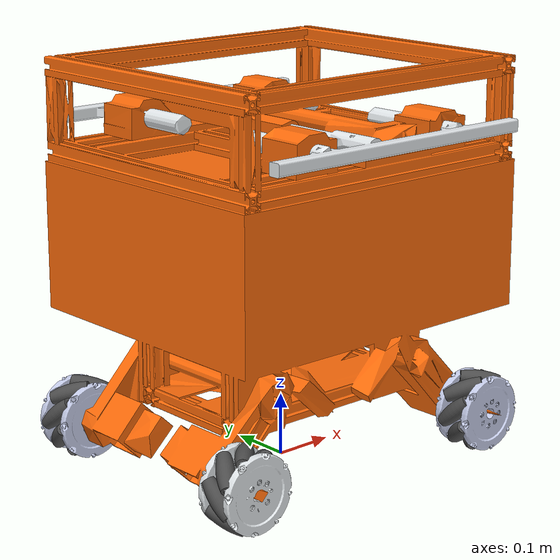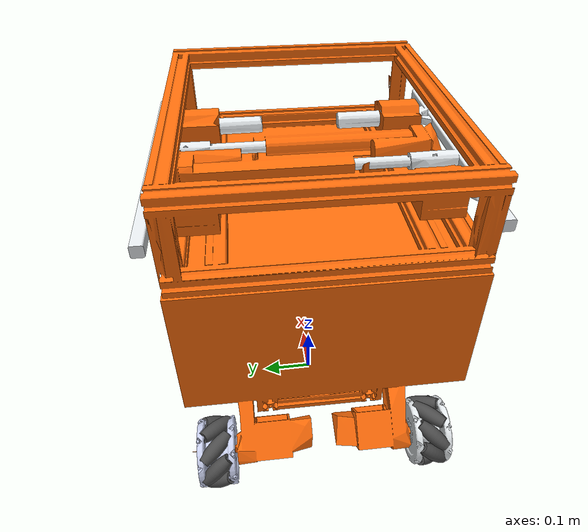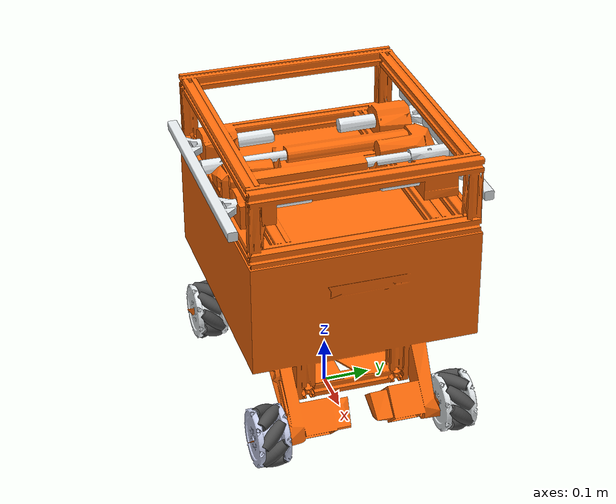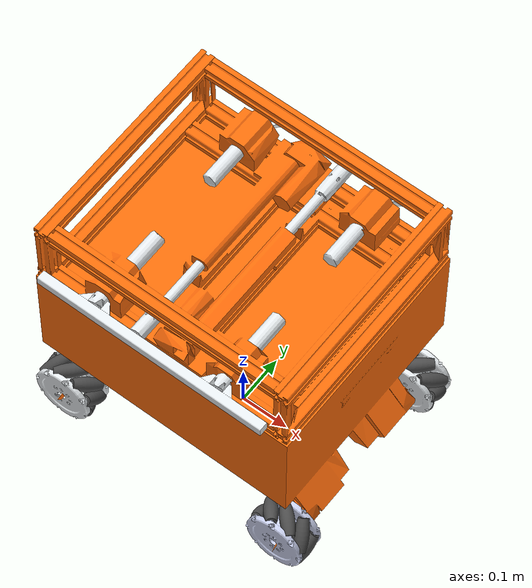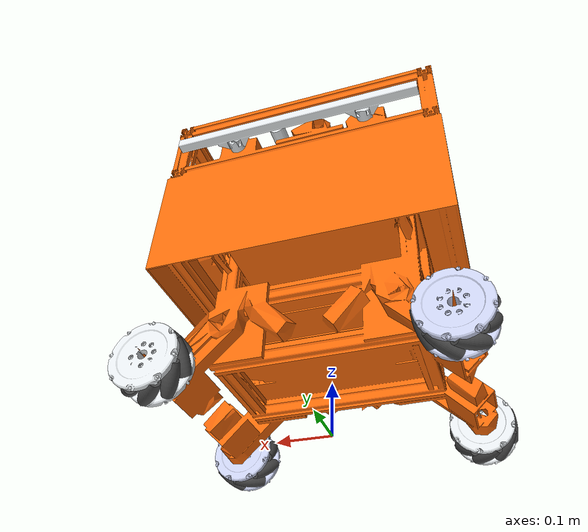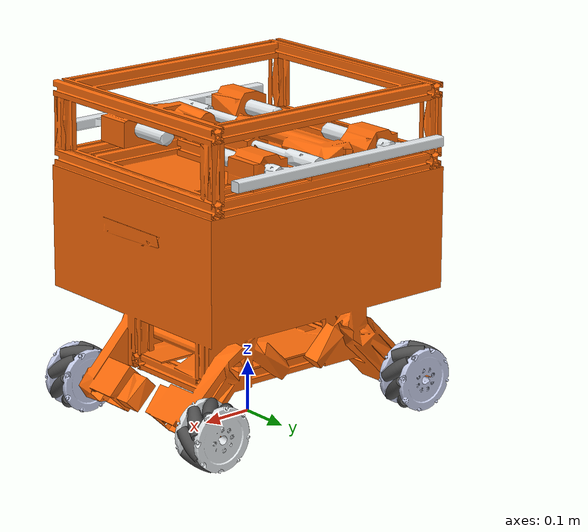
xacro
<?xml version="1.0" encoding="utf-8"?>
<robot xmlns:xacro="http://www.ros.org/wiki/xacro" name="recon_bot">

  <xacro:include filename="$(find recon_bot_description)/robot/materials.xacro"/>

  <link name="base_footprint">
    <origin xyz="0.0 0.0 0.0" rpy="0.0 0.0 3.14" />
  </link>
    <joint name="Mobile_Base_to_base_footprint" type="fixed">
    <parent link="base_footprint"/>
    <child link="Mobile_Base"/>
    <origin rpy="0 0 0" xyz="0 0 0.48"/>
  </joint>

  <link
    name="Mobile_Base"> <!-- name_of_my_robot_base_link -->
    <inertial>
      <origin
        xyz="0.00270794889201253 0.000926242394781646 -0.128115066829716"
        rpy="0 0 0" />
      <mass
        value="13.0496430135498" />
      <inertia
        ixx="0.078428885336732"
        ixy="-0.000424260125405416"
        ixz="-4.99662127671641E-08"
        iyy="0.101100659734584"
        iyz="-1.90955777107521E-07"
        izz="0.156190952643998" />
    </inertial>
    <visual>
      <origin
        xyz="0 0 0"
        rpy="0 0 0" />
      <geometry>
        <mesh
          filename="package://recon_bot_description/meshes2/Mobile_Base_visual.stl" />
      </geometry>
      <material
        name="orange">
      </material>
    </visual>
    <collision>
      <origin
        xyz="0 0 0"
        rpy="0 0 0" />
      <geometry>
        <mesh
          filename="package://recon_bot_description/meshes/Mobile_Base.STL" />
      </geometry>
    </collision>
  </link>

    <!-- Joint and Link for the Merged Laser Scan Frame -->
  <link name="merged_scan_frame">
  </link>

  <joint name="merged_scan_joint" type="fixed">
    <parent link="Mobile_Base"/>
    <child link="merged_scan_frame"/>
    <origin xyz="0 0 -0.3" rpy="0 0 0"/>
  </joint>

  <link
    name="Wheel_LF">
    <inertial>
      <origin
        xyz="-3.68604325448052E-05 8.74696815872378E-06 -0.000155511793327234"
        rpy="0 0 0" />
      <mass
        value="0.77404110274982" />
      <inertia
        ixx="0.00055506881532458"
        ixy="2.15732280355355E-07"
        ixz="-1.8565434672159E-10"
        iyy="0.000555930826369469"
        iyz="2.2728326005673E-10"
        izz="0.00098890621085001" />
    </inertial>
    <visual>
      <origin
        xyz="0 0 0"
        rpy="0 0 0" />
      <geometry>
        <mesh
          filename="package://recon_bot_description/meshes2/Wheel_LF_visual.stl" />
      </geometry>
      <material
        name="">
        <color
          rgba="0.898039215686275 0.917647058823529 0.929411764705882 1" />
      </material>
    </visual>
    <collision>
      <origin
        xyz="0 0 0"
        rpy="0 0 0" />
      <geometry>
        <mesh
          filename="package://recon_bot_description/meshes/Wheel_LF.STL" />
      </geometry>
    </collision>
  </link>
  <joint
    name="J_Wheel_LF"
    type="continuous">
    <origin
      xyz="0.243373703143014 0.196999999999994 -0.410500520826094"
      rpy="1.5707963267949 -0.698892577239709 0" />
    <parent
      link="Mobile_Base" />
    <child
      link="Wheel_LF" />
    <axis
      xyz="0 0 -1" />
  </joint>
  <link
    name="Roller_LF_1">
    <inertial>
      <origin
        xyz="-3.83179044050053E-10 -5.66471425322845E-10 -6.83960459380017E-08"
        rpy="0 0 0" />
      <mass
        value="0.0352584429300114" />
      <inertia
        ixx="1.04260747160859E-05"
        ixy="-3.74986144430689E-16"
        ixz="3.16159847563384E-11"
        iyy="1.04260747162553E-05"
        iyz="-7.59166288672171E-12"
        izz="3.2461714596406E-06" />
    </inertial>
    <visual>
      <origin
        xyz="0 0 0"
        rpy="0 0 0" />
      <geometry>
        <mesh
          filename="package://recon_bot_description/meshes/Roller_LF_1.STL" />
      </geometry>
      <material
        name="">
        <color
          rgba="0.298039215686275 0.298039215686275 0.298039215686275 1" />
      </material>
    </visual>
    <collision>
      <origin
        xyz="0 0 0"
        rpy="0 0 0" />
      <geometry>
        <mesh
          filename="package://recon_bot_description/meshes/Roller_LF_1.STL" />
      </geometry>
    </collision>
  </link>
  <joint
    name="J_Roller_LF_1"
    type="fixed">
    <origin
      xyz="0.0495000000000021 0 0"
      rpy="0 0.785398163397682 1.57079632679483" />
    <parent
      link="Wheel_LF" />
    <child
      link="Roller_LF_1" />
    <axis
      xyz="0 0 -1" />
  </joint>
  <link
    name="Roller_LF_2">
    <inertial>
      <origin
        xyz="-3.09857084435095E-10 1.10555131715984E-09 -4.17113807937852E-08"
        rpy="0 0 0" />
      <mass
        value="0.0352584429300109" />
      <inertia
        ixx="1.04260761905346E-05"
        ixy="2.1024734179391E-16"
        ixz="-2.4788845569513E-11"
        iyy="1.04260761890094E-05"
        iyz="-2.10620761229012E-11"
        izz="3.2461714605291E-06" />
    </inertial>
    <visual>
      <origin
        xyz="0 0 0"
        rpy="0 0 0" />
      <geometry>
        <mesh
          filename="package://recon_bot_description/meshes/Roller_LF_2.STL" />
      </geometry>
      <material
        name="">
        <color
          rgba="0.298039215686275 0.298039215686275 0.298039215686275 1" />
      </material>
    </visual>
    <collision>
      <origin
        xyz="0 0 0"
        rpy="0 0 0" />
      <geometry>
        <mesh
          filename="package://recon_bot_description/meshes/Roller_LF_2.STL" />
      </geometry>
    </collision>
  </link>
  <joint
    name="J_Roller_LF_2"
    type="fixed">
    <origin
      xyz="0.0350017856687387 0.0350017856687551 0"
      rpy="0 0.785398163397817 2.35619449019253" />
    <parent
      link="Wheel_LF" />
    <child
      link="Roller_LF_2" />
    <axis
      xyz="0 0 -1" />
  </joint>
  <link
    name="Roller_LF_3">
    <inertial>
      <origin
        xyz="7.28457724696874E-09 2.76751460637215E-09 2.27604659563951E-08"
        rpy="0 0 0" />
      <mass
        value="0.0352584429300112" />
      <inertia
        ixx="1.04260768064924E-05"
        ixy="-1.98661176213904E-14"
        ixz="-3.25498755616683E-11"
        iyy="1.04260768503918E-05"
        iyz="-1.43134028341921E-12"
        izz="3.2461715182147E-06" />
    </inertial>
    <visual>
      <origin
        xyz="0 0 0"
        rpy="0 0 0" />
      <geometry>
        <mesh
          filename="package://recon_bot_description/meshes/Roller_LF_3.STL" />
      </geometry>
      <material
        name="">
        <color
          rgba="0.298039215686275 0.298039215686275 0.298039215686275 1" />
      </material>
    </visual>
    <collision>
      <origin
        xyz="0 0 0"
        rpy="0 0 0" />
      <geometry>
        <mesh
          filename="package://recon_bot_description/meshes/Roller_LF_3.STL" />
      </geometry>
    </collision>
  </link>
  <joint
    name="J_Roller_LF_3"
    type="fixed">
    <origin
      xyz="0 0.0494999999999665 0"
      rpy="0 0.785398163397733 -3.14159265358936" />
    <parent
      link="Wheel_LF" />
    <child
      link="Roller_LF_3" />
    <axis
      xyz="0 0 -1" />
  </joint>
  <link
    name="Roller_LF_4">
    <inertial>
      <origin
        xyz="-8.85001738559765E-10 8.87343976074817E-10 -1.82681261229334E-08"
        rpy="0 0 0" />
      <mass
        value="0.0352584429300108" />
      <inertia
        ixx="1.04260768940345E-05"
        ixy="6.84323106163551E-16"
        ixz="-1.09712169219895E-11"
        iyy="1.04260768941283E-05"
        iyz="3.06406602966855E-11"
        izz="3.24617146037585E-06" />
    </inertial>
    <visual>
      <origin
        xyz="0 0 0"
        rpy="0 0 0" />
      <geometry>
        <mesh
          filename="package://recon_bot_description/meshes/Roller_LF_4.STL" />
      </geometry>
      <material
        name="">
        <color
          rgba="0.298039215686275 0.298039215686275 0.298039215686275 1" />
      </material>
    </visual>
    <collision>
      <origin
        xyz="0 0 0"
        rpy="0 0 0" />
      <geometry>
        <mesh
          filename="package://recon_bot_description/meshes/Roller_LF_4.STL" />
      </geometry>
    </collision>
  </link>
  <joint
    name="J_Roller_LF_4"
    type="fixed">
    <origin
      xyz="-0.0350017856687272 0.0350017856687195 0"
      rpy="0 0.785398163397478 -2.35619449019179" />
    <parent
      link="Wheel_LF" />
    <child
      link="Roller_LF_4" />
    <axis
      xyz="0 0 -1" />
  </joint>
  <link
    name="Roller_LF_5">
    <inertial>
      <origin
        xyz="1.60439111440702E-08 5.69080083057116E-09 1.2380305391968E-07"
        rpy="0 0 0" />
      <mass
        value="0.035258442930011" />
      <inertia
        ixx="1.04260694141623E-05"
        ixy="-9.94372509425932E-14"
        ixz="-1.26413841572443E-11"
        iyy="1.04260696259208E-05"
        iyz="2.99325036380074E-11"
        izz="3.24617174875245E-06" />
    </inertial>
    <visual>
      <origin
        xyz="0 0 0"
        rpy="0 0 0" />
      <geometry>
        <mesh
          filename="package://recon_bot_description/meshes/Roller_LF_5.STL" />
      </geometry>
      <material
        name="">
        <color
          rgba="0.298039215686275 0.298039215686275 0.298039215686275 1" />
      </material>
    </visual>
    <collision>
      <origin
        xyz="0 0 0"
        rpy="0 0 0" />
      <geometry>
        <mesh
          filename="package://recon_bot_description/meshes/Roller_LF_5.STL" />
      </geometry>
    </collision>
  </link>
  <joint
    name="J_Roller_LF_5"
    type="fixed">
    <origin
      xyz="-0.0495000000000251 0 0"
      rpy="0 0.785398163397209 -1.57079632679442" />
    <parent
      link="Wheel_LF" />
    <child
      link="Roller_LF_5" />
    <axis
      xyz="0 0 -1" />
  </joint>
  <link
    name="Roller_LF_6">
    <inertial>
      <origin
        xyz="-3.82563758449805E-10 -1.68518196619338E-09 4.39527294004982E-08"
        rpy="0 0 0" />
      <mass
        value="0.035258442930011" />
      <inertia
        ixx="1.04260760941714E-05"
        ixy="-2.85658314511046E-16"
        ixz="2.80429237867042E-11"
        iyy="1.04260760917002E-05"
        iyz="1.65168143896448E-11"
        izz="3.24617146148314E-06" />
    </inertial>
    <visual>
      <origin
        xyz="0 0 0"
        rpy="0 0 0" />
      <geometry>
        <mesh
          filename="package://recon_bot_description/meshes/Roller_LF_6.STL" />
      </geometry>
      <material
        name="">
        <color
          rgba="0.298039215686275 0.298039215686275 0.298039215686275 1" />
      </material>
    </visual>
    <collision>
      <origin
        xyz="0 0 0"
        rpy="0 0 0" />
      <geometry>
        <mesh
          filename="package://recon_bot_description/meshes/Roller_LF_6.STL" />
      </geometry>
    </collision>
  </link>
  <joint
    name="J_Roller_LF_6"
    type="fixed">
    <origin
      xyz="-0.0350017856687449 -0.0350017856687672 0"
      rpy="0 0.785398163397077 -0.785398163397211" />
    <parent
      link="Wheel_LF" />
    <child
      link="Roller_LF_6" />
    <axis
      xyz="0 0 -1" />
  </joint>
  <link
    name="Roller_LF_7">
    <inertial>
      <origin
        xyz="4.28941293595386E-09 8.82995843110024E-10 -1.01682180037033E-07"
        rpy="0 0 0" />
      <mass
        value="0.0352584429300109" />
      <inertia
        ixx="1.04260718732603E-05"
        ixy="-4.33397981165643E-15"
        ixz="2.94154428780881E-11"
        iyy="1.04260718866193E-05"
        iyz="-1.40054288998785E-11"
        izz="3.24617147470388E-06" />
    </inertial>
    <visual>
      <origin
        xyz="0 0 0"
        rpy="0 0 0" />
      <geometry>
        <mesh
          filename="package://recon_bot_description/meshes/Roller_LF_7.STL" />
      </geometry>
      <material
        name="">
        <color
          rgba="0.298039215686275 0.298039215686275 0.298039215686275 1" />
      </material>
    </visual>
    <collision>
      <origin
        xyz="0 0 0"
        rpy="0 0 0" />
      <geometry>
        <mesh
          filename="package://recon_bot_description/meshes/Roller_LF_7.STL" />
      </geometry>
    </collision>
  </link>
  <joint
    name="J_Roller_LF_7"
    type="fixed">
    <origin
      xyz="0 -0.0494999999999995 0"
      rpy="0 0.785398163397161 0" />
    <parent
      link="Wheel_LF" />
    <child
      link="Roller_LF_7" />
    <axis
      xyz="0 0 -1" />
  </joint>
  <link
    name="Roller_LF_8">
    <inertial>
      <origin
        xyz="-4.45605996546306E-10 -1.68479385997955E-09 4.58650016577078E-08"
        rpy="0 0 0" />
      <mass
        value="0.035258442930011" />
      <inertia
        ixx="1.0426076009136E-05"
        ixy="-3.83896719277567E-16"
        ixz="3.2272131431729E-11"
        iyy="1.04260760061882E-05"
        iyz="-4.12147536670223E-12"
        izz="3.24617146194942E-06" />
    </inertial>
    <visual>
      <origin
        xyz="0 0 0"
        rpy="0 0 0" />
      <geometry>
        <mesh
          filename="package://recon_bot_description/meshes/Roller_LF_8.STL" />
      </geometry>
      <material
        name="">
        <color
          rgba="0.298039215686275 0.298039215686275 0.298039215686275 1" />
      </material>
    </visual>
    <collision>
      <origin
        xyz="0 0 0"
        rpy="0 0 0" />
      <geometry>
        <mesh
          filename="package://recon_bot_description/meshes/Roller_LF_8.STL" />
      </geometry>
    </collision>
  </link>
  <joint
    name="J_Roller_LF_8"
    type="fixed">
    <origin
      xyz="0.0350017856687419 -0.0350017856687232 0"
      rpy="0 0.785398163397412 0.785398163397306" />
    <parent
      link="Wheel_LF" />
    <child
      link="Roller_LF_8" />
    <axis
      xyz="0 0 -1" />
  </joint>
  <link
    name="Wheel_LR">
    <inertial>
      <origin
        xyz="2.28750886412388E-05 4.38499760812283E-05 -0.000160556590807603"
        rpy="0 0 0" />
      <mass
        value="0.286935584537691" />
      <inertia
        ixx="0.000205567523367468"
        ixy="4.86825936008885E-10"
        ixz="5.22777710432301E-10"
        iyy="0.000205922237695722"
        iyz="8.40224944649351E-11"
        izz="0.000366267561115225" />
    </inertial>
    <visual>
      <origin
        xyz="0 0 0"
        rpy="0 0 0" />
      <geometry>
        <mesh
          filename="package://recon_bot_description/meshes2/Wheel_LR_visual.stl" />
      </geometry>
      <material
        name="">
        <color
          rgba="0.792156862745098 0.819607843137255 0.933333333333333 1" />
      </material>
    </visual>
    <collision>
      <origin
        xyz="0 0 0"
        rpy="0 0 0" />
      <geometry>
        <mesh
          filename="package://recon_bot_description/meshes/Wheel_LR.STL" />
      </geometry>
    </collision>
  </link>
  <joint
    name="J_Wheel_LR"
    type="continuous">
    <origin
      xyz="-0.243373703143012 0.197 -0.410500520826101"
      rpy="1.5707963267949 -0.479686767241463 0" />
    <parent
      link="Mobile_Base" />
    <child
      link="Wheel_LR" />
    <axis
      xyz="0 0 -1" />
  </joint>
  <link
    name="Roller_LR_1">
    <inertial>
      <origin
        xyz="1.67015073992971E-08 1.25504300840795E-08 1.06866803406547E-07"
        rpy="0 0 0" />
      <mass
        value="0.0352584429300111" />
      <inertia
        ixx="1.04260715177521E-05"
        ixy="-2.16967544708089E-13"
        ixz="-9.22230104503352E-12"
        iyy="1.04260716218938E-05"
        iyz="3.09410049823601E-11"
        izz="3.24617190478418E-06" />
    </inertial>
    <visual>
      <origin
        xyz="0 0 0"
        rpy="0 0 0" />
      <geometry>
        <mesh
          filename="package://recon_bot_description/meshes/Roller_LR_1.STL" />
      </geometry>
      <material
        name="">
        <color
          rgba="0.298039215686275 0.298039215686275 0.298039215686275 1" />
      </material>
    </visual>
    <collision>
      <origin
        xyz="0 0 0"
        rpy="0 0 0" />
      <geometry>
        <mesh
          filename="package://recon_bot_description/meshes/Roller_LR_1.STL" />
      </geometry>
    </collision>
  </link>
  <joint
    name="J_Roller_LR_1"
    type="fixed">
    <origin
      xyz="0.0494999999999991 0 0"
      rpy="0 0.785398163397451 -1.57079632679496" />
    <parent
      link="Wheel_LR" />
    <child
      link="Roller_LR_1" />
    <axis
      xyz="0 0 -1" />
  </joint>
  <link
    name="Roller_LR_2">
    <inertial>
      <origin
        xyz="7.42938899289669E-09 -8.73704070203374E-09 8.61521962380873E-08"
        rpy="0 0 0" />
      <mass
        value="0.0352584429300111" />
      <inertia
        ixx="1.04260734013829E-05"
        ixy="6.31409768982622E-14"
        ixz="9.33284556850362E-12"
        iyy="1.04260733892384E-05"
        iyz="3.12763115730798E-11"
        izz="3.24617158559965E-06" />
    </inertial>
    <visual>
      <origin
        xyz="0 0 0"
        rpy="0 0 0" />
      <geometry>
        <mesh
          filename="package://recon_bot_description/meshes/Roller_LR_2.STL" />
      </geometry>
      <material
        name="">
        <color
          rgba="0.298039215686275 0.298039215686275 0.298039215686275 1" />
      </material>
    </visual>
    <collision>
      <origin
        xyz="0 0 0"
        rpy="0 0 0" />
      <geometry>
        <mesh
          filename="package://recon_bot_description/meshes/Roller_LR_2.STL" />
      </geometry>
    </collision>
  </link>
  <joint
    name="J_Roller_LR_2"
    type="fixed">
    <origin
      xyz="0.0350017856687349 0.0350017856687338 0"
      rpy="0 0.785398163397457 -0.785398163397507" />
    <parent
      link="Wheel_LR" />
    <child
      link="Roller_LR_2" />
    <axis
      xyz="0 0 -1" />
  </joint>
  <link
    name="Roller_LR_3">
    <inertial>
      <origin
        xyz="-2.48421372361918E-09 -3.8649139000313E-08 3.87014362224214E-09"
        rpy="0 0 0" />
      <mass
        value="0.0352584429300109" />
      <inertia
        ixx="1.02720896688601E-05"
        ixy="5.25739053234605E-07"
        ixz="8.97501577058071E-07"
        iyy="8.63112731680581E-06"
        iyz="-3.06419984523447E-06"
        izz="5.19511092199813E-06" />
    </inertial>
    <visual>
      <origin
        xyz="0 0 0"
        rpy="0 0 0" />
      <geometry>
        <mesh
          filename="package://recon_bot_description/meshes/Roller_LR_3.STL" />
      </geometry>
      <material
        name="">
        <color
          rgba="0.298039215686275 0.298039215686275 0.298039215686275 1" />
      </material>
    </visual>
    <collision>
      <origin
        xyz="0 0 0"
        rpy="0 0 0" />
      <geometry>
        <mesh
          filename="package://recon_bot_description/meshes/Roller_LR_3.STL" />
      </geometry>
    </collision>
  </link>
  <joint
    name="J_Roller_LR_3"
    type="fixed">
    <origin
      xyz="0 0.0494999999999999 0"
      rpy="0 0.785398163397457 -0.785398163397507" />
    <parent
      link="Wheel_LR" />
    <child
      link="Roller_LR_3" />
    <axis
      xyz="0.146446609406722 -0.499999999999993 -0.853553390593279" />
  </joint>
  <link
    name="Roller_LR_4">
    <inertial>
      <origin
        xyz="7.63942531456507E-09 -1.99390438604397E-08 1.1846500916346E-07"
        rpy="0 0 0" />
      <mass
        value="0.0352584429300108" />
      <inertia
        ixx="1.0426070450002E-05"
        ixy="1.65232144271412E-13"
        ixz="3.13331495062905E-11"
        iyy="1.04260701130261E-05"
        iyz="-7.04608640492049E-12"
        izz="3.24617193052735E-06" />
    </inertial>
    <visual>
      <origin
        xyz="0 0 0"
        rpy="0 0 0" />
      <geometry>
        <mesh
          filename="package://recon_bot_description/meshes/Roller_LR_4.STL" />
      </geometry>
      <material
        name="">
        <color
          rgba="0.298039215686275 0.298039215686275 0.298039215686275 1" />
      </material>
    </visual>
    <collision>
      <origin
        xyz="0 0 0"
        rpy="0 0 0" />
      <geometry>
        <mesh
          filename="package://recon_bot_description/meshes/Roller_LR_4.STL" />
      </geometry>
    </collision>
  </link>
  <joint
    name="J_Roller_LR_4"
    type="fixed">
    <origin
      xyz="-0.0350017856687312 0.035001785668738 0"
      rpy="0 0.78539816339745 0.785398163397392" />
    <parent
      link="Wheel_LR" />
    <child
      link="Roller_LR_4" />
    <axis
      xyz="0 0 -1" />
  </joint>
  <link
    name="Roller_LR_5">
    <inertial>
      <origin
        xyz="-1.13800639467421E-08 -2.23572448332376E-08 -1.39705523066747E-07"
        rpy="0 0 0" />
      <mass
        value="0.035258442930011" />
      <inertia
        ixx="1.04260677298263E-05"
        ixy="-2.58295319819987E-13"
        ixz="1.92470991858287E-11"
        iyy="1.0426067392854E-05"
        iyz="-2.66026490431678E-11"
        izz="3.24617207497984E-06" />
    </inertial>
    <visual>
      <origin
        xyz="0 0 0"
        rpy="0 0 0" />
      <geometry>
        <mesh
          filename="package://recon_bot_description/meshes/Roller_LR_5.STL" />
      </geometry>
      <material
        name="">
        <color
          rgba="0.298039215686275 0.298039215686275 0.298039215686275 1" />
      </material>
    </visual>
    <collision>
      <origin
        xyz="0 0 0"
        rpy="0 0 0" />
      <geometry>
        <mesh
          filename="package://recon_bot_description/meshes/Roller_LR_5.STL" />
      </geometry>
    </collision>
  </link>
  <joint
    name="J_Roller_LR_5"
    type="fixed">
    <origin
      xyz="-0.0494999999999998 0 0"
      rpy="0 0.785398163397442 1.57079632679484" />
    <parent
      link="Wheel_LR" />
    <child
      link="Roller_LR_5" />
    <axis
      xyz="0 0 -1" />
  </joint>
  <link
    name="Roller_LR_6">
    <inertial>
      <origin
        xyz="2.33893432399768E-10 1.54178633748892E-09 -2.60845123278841E-08"
        rpy="0 0 0" />
      <mass
        value="0.0352584429300111" />
      <inertia
        ixx="1.04260767232418E-05"
        ixy="-3.71422253305116E-16"
        ixz="3.32532285782223E-12"
        iyy="1.04260767205084E-05"
        iyz="-3.2358412923544E-11"
        izz="3.24617146183828E-06" />
    </inertial>
    <visual>
      <origin
        xyz="0 0 0"
        rpy="0 0 0" />
      <geometry>
        <mesh
          filename="package://recon_bot_description/meshes/Roller_LR_6.STL" />
      </geometry>
      <material
        name="">
        <color
          rgba="0.298039215686275 0.298039215686275 0.298039215686275 1" />
      </material>
    </visual>
    <collision>
      <origin
        xyz="0 0 0"
        rpy="0 0 0" />
      <geometry>
        <mesh
          filename="package://recon_bot_description/meshes/Roller_LR_6.STL" />
      </geometry>
    </collision>
  </link>
  <joint
    name="J_Roller_LR_6"
    type="fixed">
    <origin
      xyz="-0.0350017856687373 -0.035001785668729 0"
      rpy="0 0.785398163397437 2.35619449019228" />
    <parent
      link="Wheel_LR" />
    <child
      link="Roller_LR_6" />
    <axis
      xyz="0 0 -1" />
  </joint>
  <link
    name="Roller_LR_7">
    <inertial>
      <origin
        xyz="1.99958341828843E-08 1.8472178411888E-08 -5.58086615809472E-09"
        rpy="0 0 0" />
      <mass
        value="0.0352584429300108" />
      <inertia
        ixx="1.04260773904698E-05"
        ixy="-3.71094202950359E-13"
        ixz="-2.21142032202126E-11"
        iyy="1.04260774492563E-05"
        iyz="-2.38143341729084E-11"
        izz="3.24617220352037E-06" />
    </inertial>
    <visual>
      <origin
        xyz="0 0 0"
        rpy="0 0 0" />
      <geometry>
        <mesh
          filename="package://recon_bot_description/meshes/Roller_LR_7.STL" />
      </geometry>
      <material
        name="">
        <color
          rgba="0.298039215686275 0.298039215686275 0.298039215686275 1" />
      </material>
    </visual>
    <collision>
      <origin
        xyz="0 0 0"
        rpy="0 0 0" />
      <geometry>
        <mesh
          filename="package://recon_bot_description/meshes/Roller_LR_7.STL" />
      </geometry>
    </collision>
  </link>
  <joint
    name="J_Roller_LR_7"
    type="fixed">
    <origin
      xyz="0 -0.0494999999999981 0"
      rpy="0 0.785398163397437 3.14159265358973" />
    <parent
      link="Wheel_LR" />
    <child
      link="Roller_LR_7" />
    <axis
      xyz="0 0 -1" />
  </joint>
  <link
    name="Roller_LR_8">
    <inertial>
      <origin
        xyz="-4.27786778223194E-10 1.50381363750451E-08 -1.39886802030809E-07"
        rpy="0 0 0" />
      <mass
        value="0.0352584429300108" />
      <inertia
        ixx="1.04260675049186E-05"
        ixy="-2.07385810388201E-15"
        ixz="-2.69590085768581E-11"
        iyy="1.04260672661416E-05"
        iyz="-1.75459807670728E-11"
        izz="3.24617169716258E-06" />
    </inertial>
    <visual>
      <origin
        xyz="0 0 0"
        rpy="0 0 0" />
      <geometry>
        <mesh
          filename="package://recon_bot_description/meshes/Roller_LR_8.STL" />
      </geometry>
      <material
        name="">
        <color
          rgba="0.298039215686275 0.298039215686275 0.298039215686275 1" />
      </material>
    </visual>
    <collision>
      <origin
        xyz="0 0 0"
        rpy="0 0 0" />
      <geometry>
        <mesh
          filename="package://recon_bot_description/meshes/Roller_LR_8.STL" />
      </geometry>
    </collision>
  </link>
  <joint
    name="J_Roller_LR_8"
    type="fixed">
    <origin
      xyz="0.0350017856687324 -0.035001785668733 0"
      rpy="0 0.785398163397443 -2.35619449019241" />
    <parent
      link="Wheel_LR" />
    <child
      link="Roller_LR_8" />
    <axis
      xyz="0 0 -1" />
  </joint>
  <link
    name="Wheel_RF">
    <inertial>
      <origin
        xyz="2.28374030626366E-05 4.3913212168234E-05 -0.000160482316143507"
        rpy="0 0 0" />
      <mass
        value="0.286934748749192" />
      <inertia
        ixx="0.00020556617413596"
        ixy="1.10285044985226E-14"
        ixz="5.73034041739461E-10"
        iyy="0.000205921402223248"
        iyz="1.10288592805437E-14"
        izz="0.000366265336032199" />
    </inertial>
    <visual>
      <origin
        xyz="0 0 0"
        rpy="0 0 0" />
      <geometry>
        <mesh
          filename="package://recon_bot_description/meshes2/Wheel_RF_visual.stl" />
      </geometry>
      <material
        name="">
        <color
          rgba="0.792156862745098 0.819607843137255 0.933333333333333 1" />
      </material>
    </visual>
    <collision>
      <origin
        xyz="0 0 0"
        rpy="0 0 0" />
      <geometry>
        <mesh
          filename="package://recon_bot_description/meshes/Wheel_RF.STL" />
      </geometry>
    </collision>
  </link>
  <joint
    name="J_Wheel_RF"
    type="continuous">
    <origin
      xyz="0.243373703143008 -0.197 -0.410500520826103"
      rpy="-1.57079632679488 0.943014448657122 0" />
    <parent
      link="Mobile_Base" />
    <child
      link="Wheel_RF" />
    <axis
      xyz="0 0 -1" />
  </joint>
  <link
    name="Roller_RF_1">
    <inertial>
      <origin
        xyz="-2.28876292918123E-08 1.67575591736302E-08 -3.70525532478183E-08"
        rpy="0 0 0" />
      <mass
        value="0.0352584429300108" />
      <inertia
        ixx="1.04260766356289E-05"
        ixy="3.79660531325495E-13"
        ixz="-2.75547408292055E-11"
        iyy="1.04260768755305E-05"
        iyz="1.77785602475058E-11"
        izz="3.24617225532452E-06" />
    </inertial>
    <visual>
      <origin
        xyz="0 0 0"
        rpy="0 0 0" />
      <geometry>
        <mesh
          filename="package://recon_bot_description/meshes/Roller_RF_1.STL" />
      </geometry>
      <material
        name="">
        <color
          rgba="0.298039215686275 0.298039215686275 0.298039215686275 1" />
      </material>
    </visual>
    <collision>
      <origin
        xyz="0 0 0"
        rpy="0 0 0" />
      <geometry>
        <mesh
          filename="package://recon_bot_description/meshes/Roller_RF_1.STL" />
      </geometry>
    </collision>
  </link>
  <joint
    name="J_Roller_RF_1"
    type="fixed">
    <origin
      xyz="0.0494999999999999 0 0"
      rpy="0 -0.785398163397448 1.57079632679489" />
    <parent
      link="Wheel_RF" />
    <child
      link="Roller_RF_1" />
    <axis
      xyz="0 0 -1" />
  </joint>
  <link
    name="Roller_RF_2">
    <inertial>
      <origin
        xyz="-7.58374141263118E-10 -2.51046117227816E-09 5.45374427840528E-08"
        rpy="0 0 0" />
      <mass
        value="0.0352584429300108" />
      <inertia
        ixx="1.04260755789725E-05"
        ixy="-1.83702631540117E-15"
        ixz="1.253382841623E-11"
        iyy="1.04260755718119E-05"
        iyz="-2.99854305528883E-11"
        izz="3.24617146700458E-06" />
    </inertial>
    <visual>
      <origin
        xyz="0 0 0"
        rpy="0 0 0" />
      <geometry>
        <mesh
          filename="package://recon_bot_description/meshes/Roller_RF_2.STL" />
      </geometry>
      <material
        name="">
        <color
          rgba="0.298039215686275 0.298039215686275 0.298039215686275 1" />
      </material>
    </visual>
    <collision>
      <origin
        xyz="0 0 0"
        rpy="0 0 0" />
      <geometry>
        <mesh
          filename="package://recon_bot_description/meshes/Roller_RF_2.STL" />
      </geometry>
    </collision>
  </link>
  <joint
    name="J_Roller_RF_2"
    type="fixed">
    <origin
      xyz="0.0350017856687338 -0.0350017856687341 0"
      rpy="0 -0.785398163397438 0.785398163397447" />
    <parent
      link="Wheel_RF" />
    <child
      link="Roller_RF_2" />
    <axis
      xyz="0 0 -1" />
  </joint>
  <link
    name="Roller_RF_3">
    <inertial>
      <origin
        xyz="1.62190583186117E-08 -2.63133487221623E-09 1.51501947903698E-07"
        rpy="0 0 0" />
      <mass
        value="0.0352584429300107" />
      <inertia
        ixx="1.04260655466723E-05"
        ixy="3.0405123897277E-14"
        ixz="-4.03828219583914E-12"
        iyy="1.04260658049207E-05"
        iyz="3.23463899735662E-11"
        izz="3.24617172323519E-06" />
    </inertial>
    <visual>
      <origin
        xyz="0 0 0"
        rpy="0 0 0" />
      <geometry>
        <mesh
          filename="package://recon_bot_description/meshes/Roller_RF_3.STL" />
      </geometry>
      <material
        name="">
        <color
          rgba="0.298039215686275 0.298039215686275 0.298039215686275 1" />
      </material>
    </visual>
    <collision>
      <origin
        xyz="0 0 0"
        rpy="0 0 0" />
      <geometry>
        <mesh
          filename="package://recon_bot_description/meshes/Roller_RF_3.STL" />
      </geometry>
    </collision>
  </link>
  <joint
    name="J_Roller_RF_3"
    type="fixed">
    <origin
      xyz="0 -0.0495 0"
      rpy="-0.609288783050202 0.53106684913527 2.19857820493268" />
    <parent
      link="Wheel_RF" />
    <child
      link="Roller_RF_3" />
    <axis
      xyz="0 0 -1" />
  </joint>
  <link
    name="Roller_RF_4">
    <inertial>
      <origin
        xyz="-1.10020631494123E-09 -2.32654606691085E-09 5.17692528845259E-08"
        rpy="0 0 0" />
      <mass
        value="0.0352584429300106" />
      <inertia
        ixx="1.04260757252243E-05"
        ixy="-2.62052734468842E-15"
        ixz="1.15087387759186E-11"
        iyy="1.04260757196874E-05"
        iyz="-3.03999851193014E-11"
        izz="3.2461714665715E-06" />
    </inertial>
    <visual>
      <origin
        xyz="0 0 0"
        rpy="0 0 0" />
      <geometry>
        <mesh
          filename="package://recon_bot_description/meshes/Roller_RF_4.STL" />
      </geometry>
      <material
        name="">
        <color
          rgba="0.298039215686275 0.298039215686275 0.298039215686275 1" />
      </material>
    </visual>
    <collision>
      <origin
        xyz="0 0 0"
        rpy="0 0 0" />
      <geometry>
        <mesh
          filename="package://recon_bot_description/meshes/Roller_RF_4.STL" />
      </geometry>
    </collision>
  </link>
  <joint
    name="J_Roller_RF_4"
    type="fixed">
    <origin
      xyz="-0.0350017856687344 -0.0350017856687337 0"
      rpy="0 -0.785398163397439 -0.785398163397433" />
    <parent
      link="Wheel_RF" />
    <child
      link="Roller_RF_4" />
    <axis
      xyz="0 0 -1" />
  </joint>
  <link
    name="Roller_RF_5">
    <inertial>
      <origin
        xyz="2.43778411346263E-08 -1.78419561625009E-08 5.60706398533561E-08"
        rpy="0 0 0" />
      <mass
        value="0.0352584429300109" />
      <inertia
        ixx="1.04260758348702E-05"
        ixy="4.44263469091268E-13"
        ixz="2.48069949748611E-11"
        iyy="1.04260761157679E-05"
        iyz="-2.03656966850988E-11"
        izz="3.24617239087806E-06" />
    </inertial>
    <visual>
      <origin
        xyz="0 0 0"
        rpy="0 0 0" />
      <geometry>
        <mesh
          filename="package://recon_bot_description/meshes/Roller_RF_5.STL" />
      </geometry>
      <material
        name="">
        <color
          rgba="0.298039215686275 0.298039215686275 0.298039215686275 1" />
      </material>
    </visual>
    <collision>
      <origin
        xyz="0 0 0"
        rpy="0 0 0" />
      <geometry>
        <mesh
          filename="package://recon_bot_description/meshes/Roller_RF_5.STL" />
      </geometry>
    </collision>
  </link>
  <joint
    name="J_Roller_RF_5"
    type="fixed">
    <origin
      xyz="-0.0495 0 0"
      rpy="0 -0.785398163397448 -1.57079632679488" />
    <parent
      link="Wheel_RF" />
    <child
      link="Roller_RF_5" />
    <axis
      xyz="0 0 -1" />
  </joint>
  <link
    name="Roller_RF_6">
    <inertial>
      <origin
        xyz="-6.38928854268528E-10 -4.335175995962E-09 7.96774444478121E-08"
        rpy="0 0 0" />
      <mass
        value="0.035258442930011" />
      <inertia
        ixx="1.0426073900259E-05"
        ixy="-1.37727080767516E-15"
        ixz="2.87273301347097E-11"
        iyy="1.04260738797584E-05"
        iyz="-1.51581958379692E-11"
        izz="3.24617147943109E-06" />
    </inertial>
    <visual>
      <origin
        xyz="0 0 0"
        rpy="0 0 0" />
      <geometry>
        <mesh
          filename="package://recon_bot_description/meshes/Roller_RF_6.STL" />
      </geometry>
      <material
        name="">
        <color
          rgba="0.298039215686275 0.298039215686275 0.298039215686275 1" />
      </material>
    </visual>
    <collision>
      <origin
        xyz="0 0 0"
        rpy="0 0 0" />
      <geometry>
        <mesh
          filename="package://recon_bot_description/meshes/Roller_RF_6.STL" />
      </geometry>
    </collision>
  </link>
  <joint
    name="J_Roller_RF_6"
    type="fixed">
    <origin
      xyz="-0.0350017856687347 0.035001785668734 0"
      rpy="0 -0.785398163397459 -2.35619449019234" />
    <parent
      link="Wheel_RF" />
    <child
      link="Roller_RF_6" />
    <axis
      xyz="0 0 -1" />
  </joint>
  <link
    name="Roller_RF_7">
    <inertial>
      <origin
        xyz="2.0366544561945E-08 -7.13063064150532E-09 -8.72457231460011E-08"
        rpy="0 0 0" />
      <mass
        value="0.035258442930011" />
      <inertia
        ixx="1.04260733096708E-05"
        ixy="1.54326280191015E-13"
        ixz="2.02542964728518E-12"
        iyy="1.04260736676434E-05"
        iyz="3.23095488289556E-11"
        izz="3.24617193132991E-06" />
    </inertial>
    <visual>
      <origin
        xyz="0 0 0"
        rpy="0 0 0" />
      <geometry>
        <mesh
          filename="package://recon_bot_description/meshes/Roller_RF_7.STL" />
      </geometry>
      <material
        name="">
        <color
          rgba="0.298039215686275 0.298039215686275 0.298039215686275 1" />
      </material>
    </visual>
    <collision>
      <origin
        xyz="0 0 0"
        rpy="0 0 0" />
      <geometry>
        <mesh
          filename="package://recon_bot_description/meshes/Roller_RF_7.STL" />
      </geometry>
    </collision>
  </link>
  <joint
    name="J_Roller_RF_7"
    type="fixed">
    <origin
      xyz="0 0.0495 0"
      rpy="0 -0.785398163397463 3.14159265358979" />
    <parent
      link="Wheel_RF" />
    <child
      link="Roller_RF_7" />
    <axis
      xyz="0 0 -1" />
  </joint>
  <link
    name="Roller_RF_8">
    <inertial>
      <origin
        xyz="2.86524692860723E-10 3.53920168172372E-09 -5.47491037505843E-08"
        rpy="0 0 0" />
      <mass
        value="0.0352584429300108" />
      <inertia
        ixx="1.04260755664592E-05"
        ixy="-1.32125482480734E-15"
        ixz="-1.26525162368787E-11"
        iyy="1.04260755558221E-05"
        iyz="3.00123139373811E-11"
        izz="3.24617146993115E-06" />
    </inertial>
    <visual>
      <origin
        xyz="0 0 0"
        rpy="0 0 0" />
      <geometry>
        <mesh
          filename="package://recon_bot_description/meshes/Roller_RF_8.STL" />
      </geometry>
      <material
        name="">
        <color
          rgba="0.298039215686275 0.298039215686275 0.298039215686275 1" />
      </material>
    </visual>
    <collision>
      <origin
        xyz="0 0 0"
        rpy="0 0 0" />
      <geometry>
        <mesh
          filename="package://recon_bot_description/meshes/Roller_RF_8.STL" />
      </geometry>
    </collision>
  </link>
  <joint
    name="J_Roller_RF_8"
    type="fixed">
    <origin
      xyz="0.0350017856687329 0.0350017856687334 0"
      rpy="0 -0.785398163397459 2.35619449019235" />
    <parent
      link="Wheel_RF" />
    <child
      link="Roller_RF_8" />
    <axis
      xyz="0 0 -1" />
  </joint>
  <link
    name="Wheel_RR">
    <inertial>
      <origin
        xyz="-3.6897172044803E-05 8.73176160257061E-06 -0.000155533212772396"
        rpy="0 0 0" />
      <mass
        value="0.774041107399352" />
      <inertia
        ixx="0.000555071231306981"
        ixy="2.13316469015239E-07"
        ixz="2.79563667310414E-11"
        iyy="0.000555928410599816"
        iyz="-2.88355488444584E-10"
        izz="0.000988906210952547" />
    </inertial>
    <visual>
      <origin
        xyz="0 0 0"
        rpy="0 0 0" />
      <geometry>
        <mesh
          filename="package://recon_bot_description/meshes2/Wheel_RR_visual.stl" />
      </geometry>
      <material
        name="">
        <color
          rgba="0.898039215686275 0.917647058823529 0.929411764705882 1" />
      </material>
    </visual>
    <collision>
      <origin
        xyz="0 0 0"
        rpy="0 0 0" />
      <geometry>
        <mesh
          filename="package://recon_bot_description/meshes/Wheel_RR.STL" />
      </geometry>
    </collision>
  </link>
  <joint
    name="J_Wheel_RR"
    type="continuous">
    <origin
      xyz="-0.243373703143013 -0.197 -0.410500520826098"
      rpy="1.5707963267949 0.0225283753887193 -3.14159265358962" />
    <parent
      link="Mobile_Base" />
    <child
      link="Wheel_RR" />
    <axis
      xyz="0 0 -1" />
  </joint>
  <link
    name="Roller_RR_1">
    <inertial>
      <origin
        xyz="1.12114789674322E-10 -6.97872593047322E-11 -1.19170277257385E-08"
        rpy="0 0 0" />
      <mass
        value="0.035258442930011" />
      <inertia
        ixx="1.04260769898083E-05"
        ixy="6.06658231713331E-18"
        ixz="3.08085320272346E-11"
        iyy="1.04260769898007E-05"
        iyz="1.0478225912599E-11"
        izz="3.24617145901505E-06" />
    </inertial>
    <visual>
      <origin
        xyz="0 0 0"
        rpy="0 0 0" />
      <geometry>
        <mesh
          filename="package://recon_bot_description/meshes/Roller_RR_1.STL" />
      </geometry>
      <material
        name="">
        <color
          rgba="0.298039215686275 0.298039215686275 0.298039215686275 1" />
      </material>
    </visual>
    <collision>
      <origin
        xyz="0 0 0"
        rpy="0 0 0" />
      <geometry>
        <mesh
          filename="package://recon_bot_description/meshes/Roller_RR_1.STL" />
      </geometry>
    </collision>
  </link>
  <joint
    name="J_Roller_RR_1"
    type="fixed">
    <origin
      xyz="0.049500000000006 0 0"
      rpy="0 -0.785398163397444 -1.57079632679489" />
    <parent
      link="Wheel_RR" />
    <child
      link="Roller_RR_1" />
    <axis
      xyz="0 0 -1" />
  </joint>
  <link
    name="Roller_RR_2">
    <inertial>
      <origin
        xyz="0.0247500321227677 -0.0144981536896033 -0.0247498858505418"
        rpy="0 0 0" />
      <mass
        value="0.0352584429300109" />
      <inertia
        ixx="1.02720859629879E-05"
        ixy="-5.25736174296122E-07"
        ixz="-8.97478853468163E-07"
        iyy="8.63106664499607E-06"
        iyz="-3.06422871372737E-06"
        izz="5.19515582335274E-06" />
    </inertial>
    <visual>
      <origin
        xyz="0 0 0"
        rpy="0 0 0" />
      <geometry>
        <mesh
          filename="package://recon_bot_description/meshes/Roller_RR_2.STL" />
      </geometry>
      <material
        name="">
        <color
          rgba="0.298039215686275 0.298039215686275 0.298039215686275 1" />
      </material>
    </visual>
    <collision>
      <origin
        xyz="0 0 0"
        rpy="0 0 0" />
      <geometry>
        <mesh
          filename="package://recon_bot_description/meshes/Roller_RR_2.STL" />
      </geometry>
    </collision>
  </link>
  <joint
    name="J_Roller_RR_2"
    type="fixed">
    <origin
      xyz="0.049500000000006 0 0"
      rpy="0 -0.785398163397444 -1.57079632679489" />
    <parent
      link="Wheel_RR" />
    <child
      link="Roller_RR_2" />
    <axis
      xyz="-0.146446609406728 -0.5 -0.853553390593274" />
  </joint>
  <link
    name="Roller_RR_3">
    <inertial>
      <origin
        xyz="1.14529011274733E-10 -1.43740908065126E-10 -1.19538481335724E-08"
        rpy="0 0 0" />
      <mass
        value="0.035258442930011" />
      <inertia
        ixx="1.04260769893648E-05"
        ixy="6.43047561220764E-18"
        ixz="3.135428663036E-11"
        iyy="1.04260769893486E-05"
        iyz="-8.71091477927151E-12"
        izz="3.24617145902362E-06" />
    </inertial>
    <visual>
      <origin
        xyz="0 0 0"
        rpy="0 0 0" />
      <geometry>
        <mesh
          filename="package://recon_bot_description/meshes/Roller_RR_3.STL" />
      </geometry>
      <material
        name="">
        <color
          rgba="0.298039215686275 0.298039215686275 0.298039215686275 1" />
      </material>
    </visual>
    <collision>
      <origin
        xyz="0 0 0"
        rpy="0 0 0" />
      <geometry>
        <mesh
          filename="package://recon_bot_description/meshes/Roller_RR_3.STL" />
      </geometry>
    </collision>
  </link>
  <joint
    name="J_Roller_RR_3"
    type="fixed">
    <origin
      xyz="0 -0.0495000000000001 0"
      rpy="0 -0.785398163397275 -3.14159265358962" />
    <parent
      link="Wheel_RR" />
    <child
      link="Roller_RR_3" />
    <axis
      xyz="0 0 -1" />
  </joint>
  <link
    name="Roller_RR_4">
    <inertial>
      <origin
        xyz="2.76238532048723E-09 2.13770798285218E-09 -1.11114659334666E-07"
        rpy="0 0 0" />
      <mass
        value="0.0352584429300108" />
      <inertia
        ixx="1.04260708684055E-05"
        ixy="-4.05622394396635E-15"
        ixz="1.24181842518424E-11"
        iyy="1.04260708725038E-05"
        iyz="3.01041157011414E-11"
        izz="3.24617146788864E-06" />
    </inertial>
    <visual>
      <origin
        xyz="0 0 0"
        rpy="0 0 0" />
      <geometry>
        <mesh
          filename="package://recon_bot_description/meshes/Roller_RR_4.STL" />
      </geometry>
      <material
        name="">
        <color
          rgba="0.298039215686275 0.298039215686275 0.298039215686275 1" />
      </material>
    </visual>
    <collision>
      <origin
        xyz="0 0 0"
        rpy="0 0 0" />
      <geometry>
        <mesh
          filename="package://recon_bot_description/meshes/Roller_RR_4.STL" />
      </geometry>
    </collision>
  </link>
  <joint
    name="J_Roller_RR_4"
    type="fixed">
    <origin
      xyz="-0.0350017856687443 -0.0350017856687639 0"
      rpy="0 -0.785398163397327 2.35619449019265" />
    <parent
      link="Wheel_RR" />
    <child
      link="Roller_RR_4" />
    <axis
      xyz="0 0 -1" />
  </joint>
  <link
    name="Roller_RR_5">
    <inertial>
      <origin
        xyz="4.96390428761373E-11 8.79210593218716E-12 8.75807198985612E-09"
        rpy="0 0 0" />
      <mass
        value="0.0352584429300111" />
      <inertia
        ixx="1.04260770225584E-05"
        ixy="-1.99762132698086E-18"
        ixz="-1.85692606996194E-11"
        iyy="1.04260770225577E-05"
        iyz="2.6723573066859E-11"
        izz="3.24617145900821E-06" />
    </inertial>
    <visual>
      <origin
        xyz="0 0 0"
        rpy="0 0 0" />
      <geometry>
        <mesh
          filename="package://recon_bot_description/meshes/Roller_RR_5.STL" />
      </geometry>
      <material
        name="">
        <color
          rgba="0.298039215686275 0.298039215686275 0.298039215686275 1" />
      </material>
    </visual>
    <collision>
      <origin
        xyz="0 0 0"
        rpy="0 0 0" />
      <geometry>
        <mesh
          filename="package://recon_bot_description/meshes/Roller_RR_5.STL" />
      </geometry>
    </collision>
  </link>
  <joint
    name="J_Roller_RR_5"
    type="fixed">
    <origin
      xyz="-0.0495000000000206 0 0"
      rpy="0 -0.78539816339745 1.57079632679524" />
    <parent
      link="Wheel_RR" />
    <child
      link="Roller_RR_5" />
    <axis
      xyz="0 0 -1" />
  </joint>
  <link
    name="Roller_RR_6">
    <inertial>
      <origin
        xyz="-5.57324551786476E-09 2.04404754233778E-09 -1.28496821960589E-07"
        rpy="0 0 0" />
      <mass
        value="0.0352584429300109" />
      <inertia
        ixx="1.04260687757173E-05"
        ixy="7.73717502284936E-15"
        ixz="-1.85253924061901E-11"
        iyy="1.0426068800802E-05"
        iyz="2.68437436203528E-11"
        izz="3.24617148814881E-06" />
    </inertial>
    <visual>
      <origin
        xyz="0 0 0"
        rpy="0 0 0" />
      <geometry>
        <mesh
          filename="package://recon_bot_description/meshes/Roller_RR_6.STL" />
      </geometry>
      <material
        name="">
        <color
          rgba="0.298039215686275 0.298039215686275 0.298039215686275 1" />
      </material>
    </visual>
    <collision>
      <origin
        xyz="0 0 0"
        rpy="0 0 0" />
      <geometry>
        <mesh
          filename="package://recon_bot_description/meshes/Roller_RR_6.STL" />
      </geometry>
    </collision>
  </link>
  <joint
    name="J_Roller_RR_6"
    type="fixed">
    <origin
      xyz="-0.0350017856687212 0.0350017856687237 0"
      rpy="0 -0.785398163397572 0.78539816339774" />
    <parent
      link="Wheel_RR" />
    <child
      link="Roller_RR_6" />
    <axis
      xyz="0 0 -1" />
  </joint>
  <link
    name="Roller_RR_7">
    <inertial>
      <origin
        xyz="1.18025478279549E-10 1.32408584097021E-10 1.20856665924984E-08"
        rpy="0 0 0" />
      <mass
        value="0.0352584429300108" />
      <inertia
        ixx="1.04260769877755E-05"
        ixy="-6.49989260921309E-18"
        ixz="-3.19602978087345E-11"
        iyy="1.0426076987761E-05"
        iyz="-6.12441084700149E-12"
        izz="3.24617145902205E-06" />
    </inertial>
    <visual>
      <origin
        xyz="0 0 0"
        rpy="0 0 0" />
      <geometry>
        <mesh
          filename="package://recon_bot_description/meshes/Roller_RR_7.STL" />
      </geometry>
      <material
        name="">
        <color
          rgba="0.298039215686275 0.298039215686275 0.298039215686275 1" />
      </material>
    </visual>
    <collision>
      <origin
        xyz="0 0 0"
        rpy="0 0 0" />
      <geometry>
        <mesh
          filename="package://recon_bot_description/meshes/Roller_RR_7.STL" />
      </geometry>
    </collision>
  </link>
  <joint
    name="J_Roller_RR_7"
    type="fixed">
    <origin
      xyz="0 0.0494999999999669 0"
      rpy="0 -0.78539816339762 0" />
    <parent
      link="Wheel_RR" />
    <child
      link="Roller_RR_7" />
    <axis
      xyz="0 0 -1" />
  </joint>
  <link
    name="Roller_RR_8">
    <inertial>
      <origin
        xyz="-1.74573559219571E-08 -8.01624572277504E-10 9.90356089913824E-08"
        rpy="0 0 0" />
      <mass
        value="0.035258442930011" />
      <inertia
        ixx="1.04260721421412E-05"
        ixy="-2.24826665582047E-14"
        ixz="5.61434170959108E-12"
        iyy="1.04260724436141E-05"
        iyz="-3.20575856409404E-11"
        izz="3.24617176333256E-06" />
    </inertial>
    <visual>
      <origin
        xyz="0 0 0"
        rpy="0 0 0" />
      <geometry>
        <mesh
          filename="package://recon_bot_description/meshes/Roller_RR_8.STL" />
      </geometry>
      <material
        name="">
        <color
          rgba="0.298039215686275 0.298039215686275 0.298039215686275 1" />
      </material>
    </visual>
    <collision>
      <origin
        xyz="0 0 0"
        rpy="0 0 0" />
      <geometry>
        <mesh
          filename="package://recon_bot_description/meshes/Roller_RR_8.STL" />
      </geometry>
    </collision>
  </link>
  <joint
    name="J_Roller_RR_8"
    type="fixed">
    <origin
      xyz="0.0350017856687396 0.0350017856687503 0"
      rpy="0 -0.785398163397566 -0.785398163397389" />
    <parent
      link="Wheel_RR" />
    <child
      link="Roller_RR_8" />
    <axis
      xyz="0 0 -1" />
  </joint>
  <link
    name="Pin_Head_L">
    <inertial>
      <origin
        xyz="2.1559243279512E-10 -0.0321906491972987 -0.0458464269660464"
        rpy="0 0 0" />
      <mass
        value="1.48466823730085" />
      <inertia
        ixx="0.0119893258639138"
        ixy="-6.29977450022121E-13"
        ixz="-2.11071844261683E-11"
        iyy="0.00224564184360829"
        iyz="-6.50425726210649E-11"
        izz="0.00987450416832168" />
    </inertial>
    <visual>
      <origin
        xyz="0 0 0"
        rpy="0 0 0" />
      <geometry>
        <mesh
          filename="package://recon_bot_description/meshes2/Pin_Head_L_visual.stl" />
      </geometry>
      <material
        name="">
        <color
          rgba="0.898039215686275 0.917647058823529 0.929411764705882 1" />
      </material>
    </visual>
    <collision>
      <origin
        xyz="0 0 0"
        rpy="0 0 0" />
      <geometry>
        <mesh
          filename="package://recon_bot_description/meshes/Pin_Head_L.STL" />
      </geometry>
    </collision>
  </link>
  <joint
    name="J_Pin_Head_L"
    type="fixed">
    <origin
      xyz="0.04 0.2352 0.06"
      rpy="4.71365 -1.5708 0" />
    <parent
      link="Mobile_Base" />
    <child
      link="Pin_Head_L" />
    <axis
      xyz="0 0 1" />
    <limit
      lower="0"
      upper="0.07"
      effort="0"
      velocity="0" />
  </joint>
  <link
    name="Pin_Head_R">
    <inertial>
      <origin
        xyz="-2.1559198870591E-10 0.0321906491972989 -0.0458464269660465"
        rpy="0 0 0" />
      <mass
        value="1.48466823730085" />
      <inertia
        ixx="0.0119893258639138"
        ixy="-6.29978075149543E-13"
        ixz="2.1107197896332E-11"
        iyy="0.00224564184360829"
        iyz="6.50425742700792E-11"
        izz="0.00987450416832168" />
    </inertial>
    <visual>
      <origin
        xyz="0 0 0"
        rpy="0 0 0" />
      <geometry>
        <mesh
          filename="package://recon_bot_description/meshes2/Pin_Head_R_visual.stl" />
      </geometry>
      <material
        name="">
        <color
          rgba="0.898039215686275 0.917647058823529 0.929411764705882 1" />
      </material>
    </visual>
    <collision>
      <origin
        xyz="0 0 0"
        rpy="0 0 0" />
      <geometry>
        <mesh
          filename="package://recon_bot_description/meshes/Pin_Head_R.STL" />
      </geometry>
    </collision>
  </link>
  <joint
    name="J_Pin_Head_R"
    type="fixed">
    <origin
      xyz="-0.04 -0.2335 0.06"
      rpy="1.5708 1.5708 0" />
    <parent
      link="Mobile_Base" />
    <child
      link="Pin_Head_R" />
    <axis
      xyz="0 0 1" />
    <limit
      lower="0"
      upper="0.07"
      effort="0"
      velocity="0" />
  </joint>
</robot>

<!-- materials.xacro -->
<robot xmlns:xacro="http://www.ros.org/wiki/xacro" >

  <material name="black">
    <color rgba="0.0 0.0 0.0 1.0"/>
  </material>

  <material name="blue">
    <color rgba="0.0 0.0 0.8 1.0"/>
  </material>

  <material name="green">
    <color rgba="0.0 0.8 0.0 1.0"/>
  </material>

  <material name="grey">
    <color rgba="0.2 0.2 0.2 1.0"/>
  </material>

  <material name="orange">
    <color rgba="${255/255} ${108/255} ${10/255} 1.0"/>
  </material>

  <material name="brown">
    <color rgba="${222/255} ${207/255} ${195/255} 1.0"/>
  </material>

  <material name="red">
    <color rgba="0.8 0.0 0.0 1.0"/>
  </material>

  <material name="white">
    <color rgba="1.0 1.0 1.0 1.0"/>
  </material>

</robot>
